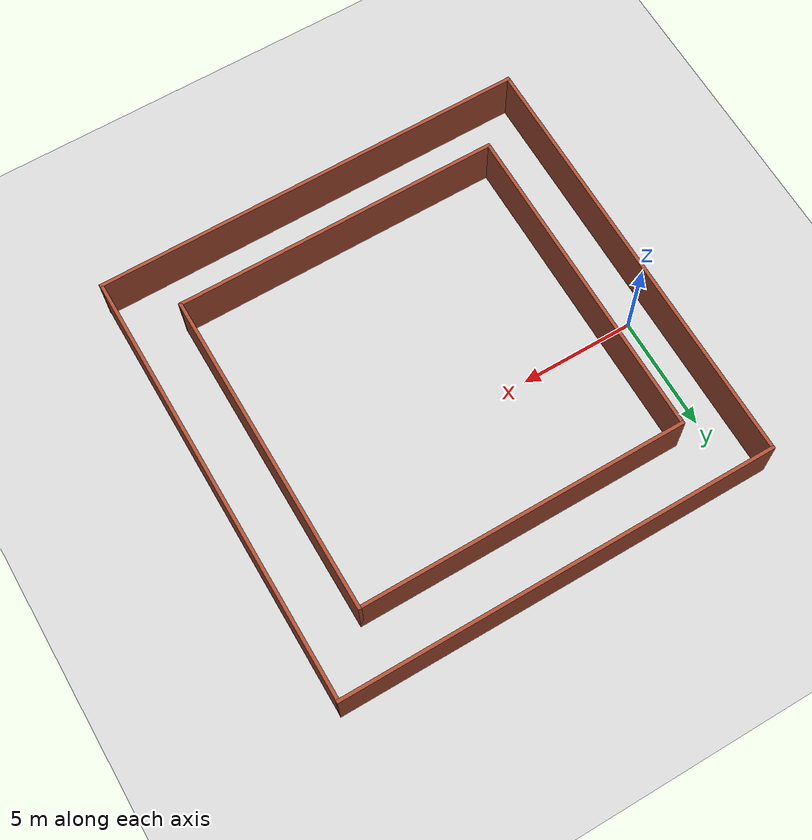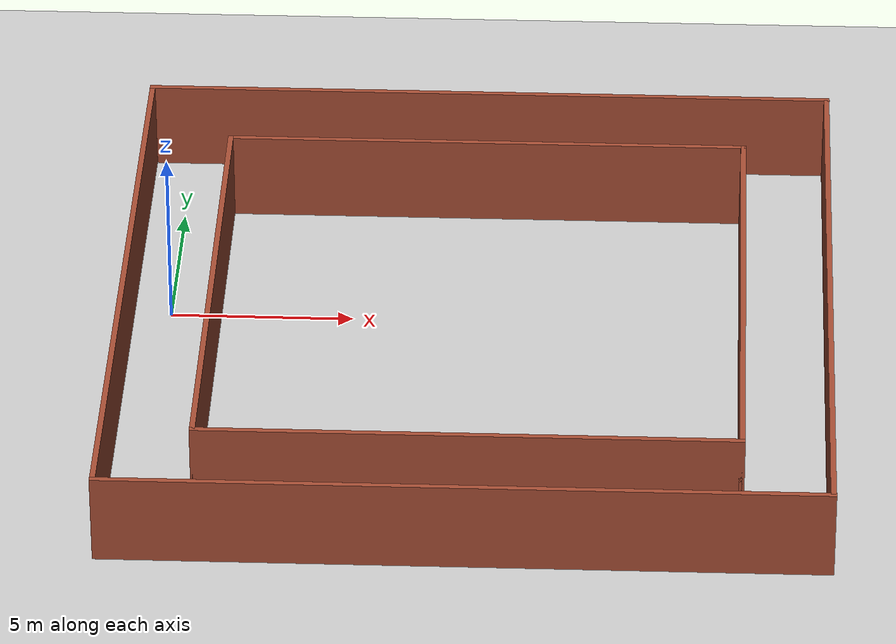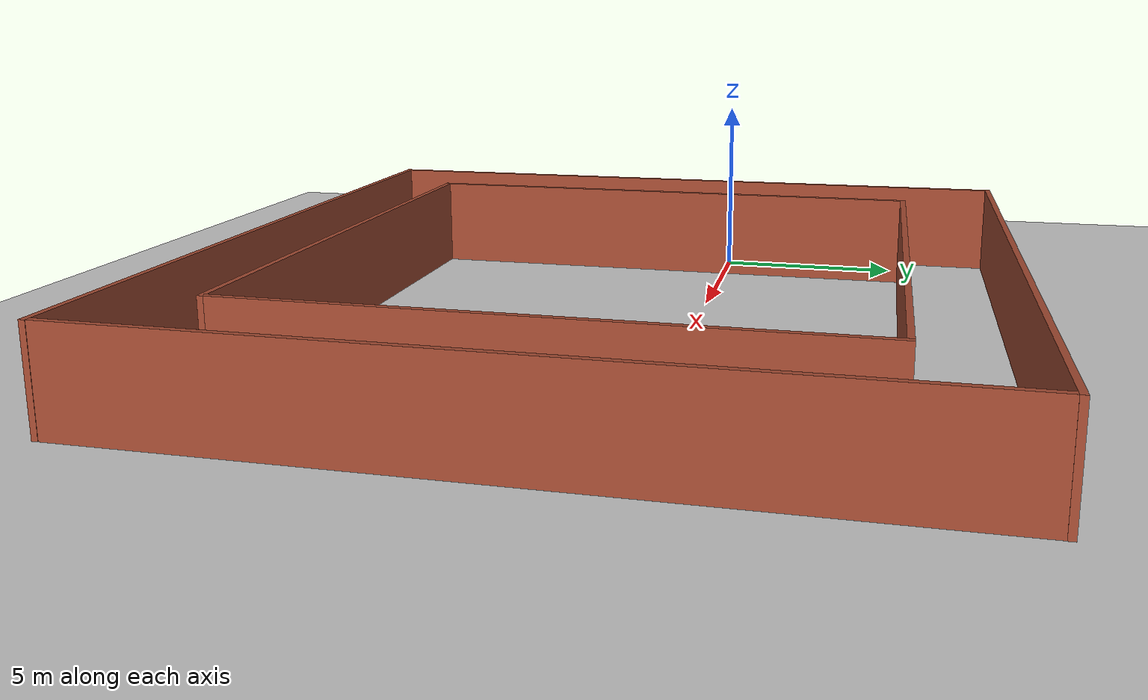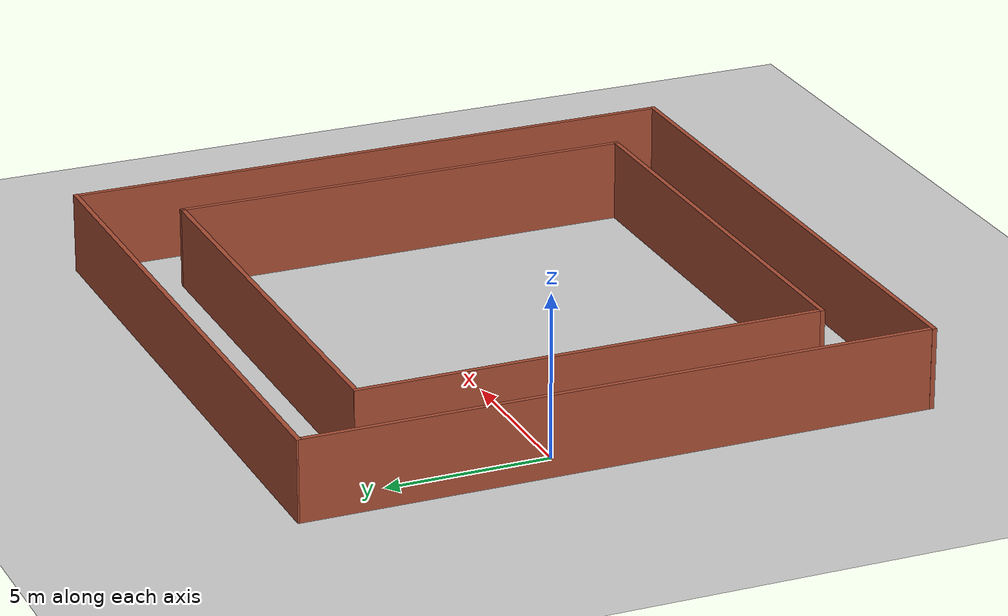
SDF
<sdf version="1.7">
 <world name="default">
  <light name="sun" type="directional">
   <pose>0 0 10 0 -0 0</pose>
   <diffuse>0.8 0.8 0.8 1</diffuse>
   <specular>0.2 0.2 0.2 1</specular>
   <attenuation>
    <range>1000</range>
    <constant>0.9</constant>
    <linear>0.01</linear>
    <quadratic>0.001</quadratic>
   </attenuation>
   <direction>-0.5 0.1 -0.9</direction>
   <spot><inner_angle>0</inner_angle><outer_angle>0</outer_angle><falloff>0</falloff></spot>
  </light>
  <model name="ground_plane">
   <static>1</static>
   <link name="link">
    <collision name="collision">
     <geometry><plane><normal>0 0 1</normal><size>100 100</size></plane></geometry>
     <surface><friction><ode><mu>100</mu><mu2>50</mu2></ode></friction></surface>
    </collision>
    <visual name="visual">
     <cast_shadows>0</cast_shadows>
     <geometry><plane><normal>0 0 1</normal><size>100 100</size></plane></geometry>
     <material>
      <script><uri>file://media/materials/scripts/gazebo.material</uri><name>Gazebo/Grey</name></script>
     </material>
    </visual>
   </link>
  </model>
  <gravity>0 0 -9.8</gravity>
  <magnetic_field>6e-06 2.3e-05 -4.2e-05</magnetic_field>
  <atmosphere type="adiabatic"/>
  <physics type="ode">
   <max_step_size>0.001</max_step_size>
   <real_time_factor>1</real_time_factor>
   <real_time_update_rate>1000</real_time_update_rate>
  </physics>
  <scene><ambient>0.4 0.4 0.4 1</ambient><background>0.7 0.7 0.7 1</background><shadows>1</shadows></scene>
  <spherical_coordinates>
   <surface_model>EARTH_WGS84</surface_model>
   <latitude_deg>0</latitude_deg>
   <longitude_deg>0</longitude_deg>
   <elevation>0</elevation>
   <heading_deg>0</heading_deg>
  </spherical_coordinates>
  <model name="4corners">
   <pose>8.45838 -1.7279 0 0 -0 0</pose>
   <link name="Wall_11">
    <collision name="Wall_11_Collision">
     <geometry><box><size>14.5 0.15 2.5</size></box></geometry>
     <pose>0 0 1.25 0 -0 0</pose>
    </collision>
    <visual name="Wall_11_Visual">
     <pose>0 0 1.25 0 -0 0</pose>
     <geometry><box><size>14.5 0.15 2.5</size></box></geometry>
     <material>
      <script><uri>file://media/materials/scripts/gazebo.material</uri><name>Gazebo/Bricks</name></script>
      <ambient>1 1 1 1</ambient>
     </material>
     <meta><layer>0</layer></meta>
    </visual>
    <pose>-7.14972 -0.1282 0 0 -0 1.5708</pose>
   </link>
   <link name="Wall_15">
    <collision name="Wall_15_Collision">
     <geometry><box><size>14.5 0.15 2.5</size></box></geometry>
     <pose>0 0 1.25 0 -0 0</pose>
    </collision>
    <visual name="Wall_15_Visual">
     <pose>0 0 1.25 0 -0 0</pose>
     <geometry><box><size>14.5 0.15 2.5</size></box></geometry>
     <material>
      <script><uri>file://media/materials/scripts/gazebo.material</uri><name>Gazebo/Bricks</name></script>
      <ambient>1 1 1 1</ambient>
     </material>
     <meta><layer>0</layer></meta>
    </visual>
    <pose>0.025284 7.0468 0 0 -0 0</pose>
   </link>
   <link name="Wall_16">
    <collision name="Wall_16_Collision">
     <geometry><box><size>14.5 0.15 2.5</size></box></geometry>
     <pose>0 0 1.25 0 -0 0</pose>
    </collision>
    <visual name="Wall_16_Visual">
     <pose>0 0 1.25 0 -0 0</pose>
     <geometry><box><size>14.5 0.15 2.5</size></box></geometry>
     <material>
      <script><uri>file://media/materials/scripts/gazebo.material</uri><name>Gazebo/Bricks</name></script>
      <ambient>1 1 1 1</ambient>
     </material>
     <meta><layer>0</layer></meta>
    </visual>
    <pose>7.20029 -0.1282 0 0 -0 -1.5708</pose>
   </link>
   <link name="Wall_18">
    <collision name="Wall_18_Collision">
     <geometry><box><size>19.25 0.15 2.5</size></box></geometry>
     <pose>0 0 1.25 0 -0 0</pose>
    </collision>
    <visual name="Wall_18_Visual">
     <pose>0 0 1.25 0 -0 0</pose>
     <geometry><box><size>19.25 0.15 2.5</size></box></geometry>
     <material>
      <script><uri>file://media/materials/scripts/gazebo.material</uri><name>Gazebo/Bricks</name></script>
      <ambient>1 1 1 1</ambient>
     </material>
     <meta><layer>0</layer></meta>
    </visual>
    <pose>-9.55 0.05 0 0 -0 1.5708</pose>
   </link>
   <link name="Wall_20">
    <collision name="Wall_20_Collision">
     <geometry><box><size>19.25 0.15 2.5</size></box></geometry>
     <pose>0 0 1.25 0 -0 0</pose>
    </collision>
    <visual name="Wall_20_Visual">
     <pose>0 0 1.25 0 -0 0</pose>
     <geometry><box><size>19.25 0.15 2.5</size></box></geometry>
     <material>
      <script><uri>file://media/materials/scripts/gazebo.material</uri><name>Gazebo/Bricks</name></script>
      <ambient>1 1 1 1</ambient>
     </material>
     <meta><layer>0</layer></meta>
    </visual>
    <pose>1e-06 9.6532 0 0 -0 0</pose>
   </link>
   <link name="Wall_27">
    <collision name="Wall_27_Collision">
     <geometry><box><size>19.25 0.15 2.5</size></box></geometry>
     <pose>0 0 1.25 0 -0 0</pose>
    </collision>
    <visual name="Wall_27_Visual">
     <pose>0 0 1.25 0 -0 0</pose>
     <geometry><box><size>19.25 0.15 2.5</size></box></geometry>
     <material>
      <script><uri>file://media/materials/scripts/gazebo.material</uri><name>Gazebo/Bricks</name></script>
      <ambient>1 1 1 1</ambient>
     </material>
     <meta><layer>0</layer></meta>
    </visual>
    <pose>9.54183 0.006263 0 0 -0 1.5708</pose>
   </link>
   <link name="Wall_31">
    <collision name="Wall_31_Collision">
     <geometry><box><size>14.5009 0.15 2.5</size></box></geometry>
     <pose>0 0 1.25 0 -0 0</pose>
    </collision>
    <visual name="Wall_31_Visual">
     <pose>0 0 1.25 0 -0 0</pose>
     <geometry><box><size>14.5009 0.15 2.5</size></box></geometry>
     <material>
      <script><uri>file://media/materials/scripts/gazebo.material</uri><name>Gazebo/Bricks</name></script>
      <ambient>1 1 1 1</ambient>
     </material>
     <meta><layer>0</layer></meta>
    </visual>
    <pose>0.025284 -7.3032 0 0 -0 0</pose>
   </link>
   <link name="Wall_36">
    <collision name="Wall_36_Collision">
     <geometry><box><size>19.25 0.15 2.5</size></box></geometry>
     <pose>0 0 1.25 0 -0 0</pose>
    </collision>
    <visual name="Wall_36_Visual">
     <pose>0 0 1.25 0 -0 0</pose>
     <geometry><box><size>19.25 0.15 2.5</size></box></geometry>
     <material>
      <script><uri>file://media/materials/scripts/gazebo.material</uri><name>Gazebo/Bricks</name></script>
      <ambient>1 1 1 1</ambient>
     </material>
     <meta><layer>0</layer></meta>
    </visual>
    <pose>1e-06 -9.6532 0 0 -0 3.14159</pose>
   </link>
   <static>1</static>
  </model>
 </world>
</sdf>
